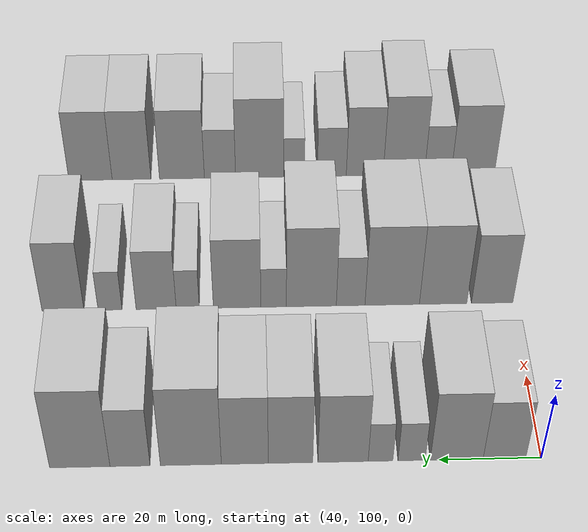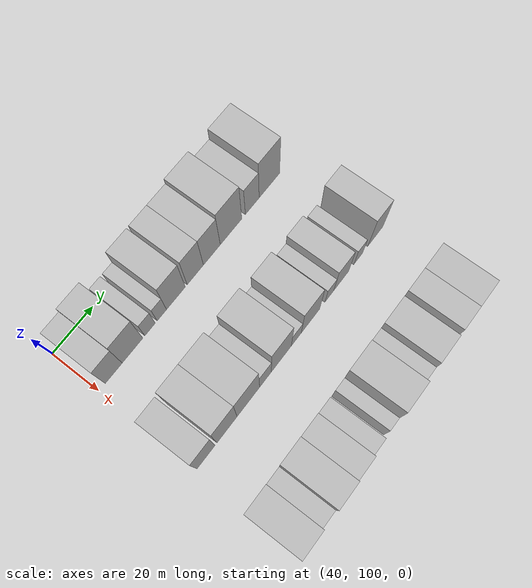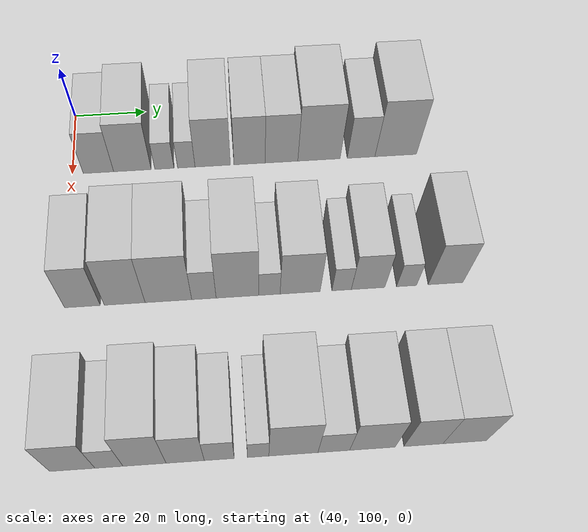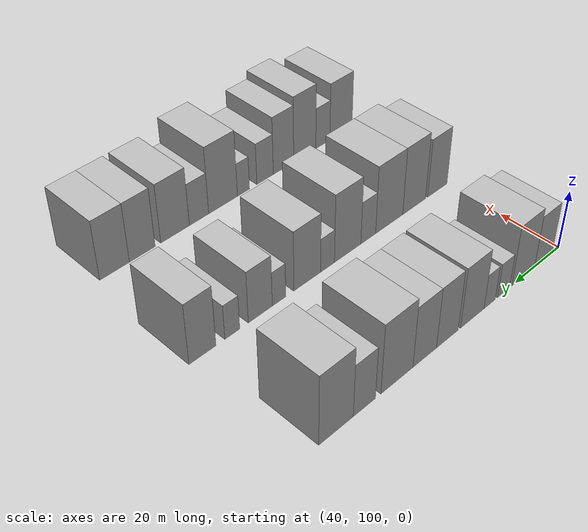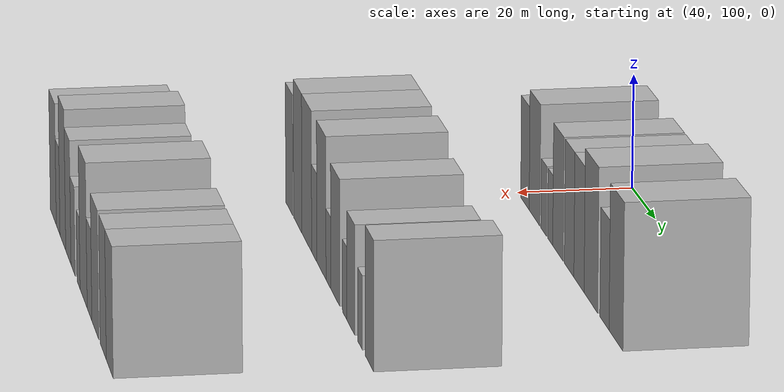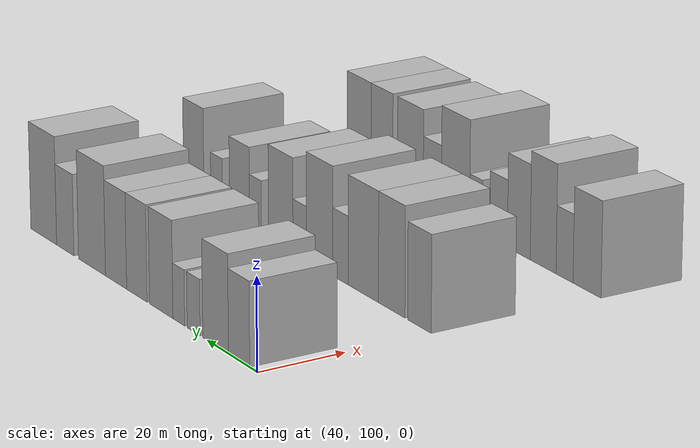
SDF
<sdf version="1.6">
 <world name="default">
  <model name="building_58">
   <static>1</static>
   <pose>50.0000 107.1988 0 0.000000 0.000000 0.000000</pose>
   <link name="link">
    <pose>0 0 9.00 0 0 0</pose>
    <collision name="collision"><geometry><box><size>20.0000 8.3412 18.0000</size></box></geometry></collision>
    <visual name="visual">
     <cast_shadows>0</cast_shadows>
     <geometry><box><size>20.0000 8.3412 18.0000</size></box></geometry>
     <material>
      <script>
       <uri>model://HANNAS_wall/materials/scripts</uri>
       <uri>model://HANNAS_wall/materials/textures</uri>
       <name>vrc/HANNAS_wall</name>
      </script>
     </material>
    </visual>
   </link>
  </model>
  <model name="building_59">
   <static>1</static>
   <pose>50.0000 116.5315 0 0.000000 0.000000 0.000000</pose>
   <link name="link">
    <pose>0 0 10.50 0 0 0</pose>
    <collision name="collision"><geometry><box><size>20.0000 10.3242 21.0000</size></box></geometry></collision>
    <visual name="visual">
     <cast_shadows>0</cast_shadows>
     <geometry><box><size>20.0000 10.3242 21.0000</size></box></geometry>
     <material>
      <script>
       <uri>model://HANNAS_wall/materials/scripts</uri>
       <uri>model://HANNAS_wall/materials/textures</uri>
       <name>vrc/HANNAS_wall</name>
      </script>
     </material>
    </visual>
   </link>
  </model>
  <model name="building_60">
   <static>1</static>
   <pose>50.0000 125.3416 0 0.000000 0.000000 0.000000</pose>
   <link name="link">
    <pose>0 0 6.00 0 0 0</pose>
    <collision name="collision"><geometry><box><size>20.0000 5.2962 12.0000</size></box></geometry></collision>
    <visual name="visual">
     <cast_shadows>0</cast_shadows>
     <geometry><box><size>20.0000 5.2962 12.0000</size></box></geometry>
     <material>
      <script>
       <uri>model://HANNAS_wall/materials/scripts</uri>
       <uri>model://HANNAS_wall/materials/textures</uri>
       <name>vrc/HANNAS_wall</name>
      </script>
     </material>
    </visual>
   </link>
  </model>
  <model name="building_61">
   <static>1</static>
   <pose>50.0000 131.3960 0 0.000000 0.000000 0.000000</pose>
   <link name="link">
    <pose>0 0 6.00 0 0 0</pose>
    <collision name="collision"><geometry><box><size>20.0000 4.8125 12.0000</size></box></geometry></collision>
    <visual name="visual">
     <cast_shadows>0</cast_shadows>
     <geometry><box><size>20.0000 4.8125 12.0000</size></box></geometry>
     <material>
      <script>
       <uri>model://HANNAS_wall/materials/scripts</uri>
       <uri>model://HANNAS_wall/materials/textures</uri>
       <name>vrc/HANNAS_wall</name>
      </script>
     </material>
    </visual>
   </link>
  </model>
  <model name="building_62">
   <static>1</static>
   <pose>50.0000 138.6924 0 0.000000 0.000000 0.000000</pose>
   <link name="link">
    <pose>0 0 10.50 0 0 0</pose>
    <collision name="collision"><geometry><box><size>20.0000 9.7803 21.0000</size></box></geometry></collision>
    <visual name="visual">
     <cast_shadows>0</cast_shadows>
     <geometry><box><size>20.0000 9.7803 21.0000</size></box></geometry>
     <material>
      <script>
       <uri>model://HANNAS_wall/materials/scripts</uri>
       <uri>model://HANNAS_wall/materials/textures</uri>
       <name>vrc/HANNAS_wall</name>
      </script>
     </material>
    </visual>
   </link>
  </model>
  <model name="building_63">
   <static>1</static>
   <pose>50.0000 148.9094 0 0.000000 0.000000 0.000000</pose>
   <link name="link">
    <pose>0 0 10.50 0 0 0</pose>
    <collision name="collision"><geometry><box><size>20.0000 8.6538 21.0000</size></box></geometry></collision>
    <visual name="visual">
     <cast_shadows>0</cast_shadows>
     <geometry><box><size>20.0000 8.6538 21.0000</size></box></geometry>
     <material>
      <script>
       <uri>model://HANNAS_wall/materials/scripts</uri>
       <uri>model://HANNAS_wall/materials/textures</uri>
       <name>vrc/HANNAS_wall</name>
      </script>
     </material>
    </visual>
   </link>
  </model>
  <model name="building_64">
   <static>1</static>
   <pose>50.0000 157.7928 0 0.000000 0.000000 0.000000</pose>
   <link name="link">
    <pose>0 0 10.50 0 0 0</pose>
    <collision name="collision"><geometry><box><size>20.0000 9.1129 21.0000</size></box></geometry></collision>
    <visual name="visual">
     <cast_shadows>0</cast_shadows>
     <geometry><box><size>20.0000 9.1129 21.0000</size></box></geometry>
     <material>
      <script>
       <uri>model://HANNAS_wall/materials/scripts</uri>
       <uri>model://HANNAS_wall/materials/textures</uri>
       <name>vrc/HANNAS_wall</name>
      </script>
     </material>
    </visual>
   </link>
  </model>
  <model name="building_65">
   <static>1</static>
   <pose>50.0000 168.2637 0 0.000000 0.000000 0.000000</pose>
   <link name="link">
    <pose>0 0 12.00 0 0 0</pose>
    <collision name="collision"><geometry><box><size>20.0000 11.8289 24.0000</size></box></geometry></collision>
    <visual name="visual">
     <cast_shadows>0</cast_shadows>
     <geometry><box><size>20.0000 11.8289 24.0000</size></box></geometry>
     <material>
      <script>
       <uri>model://HANNAS_wall/materials/scripts</uri>
       <uri>model://HANNAS_wall/materials/textures</uri>
       <name>vrc/HANNAS_wall</name>
      </script>
     </material>
    </visual>
   </link>
  </model>
  <model name="building_66">
   <static>1</static>
   <pose>50.0000 180.0565 0 0.000000 0.000000 0.000000</pose>
   <link name="link">
    <pose>0 0 9.00 0 0 0</pose>
    <collision name="collision"><geometry><box><size>20.0000 7.7568 18.0000</size></box></geometry></collision>
    <visual name="visual">
     <cast_shadows>0</cast_shadows>
     <geometry><box><size>20.0000 7.7568 18.0000</size></box></geometry>
     <material>
      <script>
       <uri>model://HANNAS_wall/materials/scripts</uri>
       <uri>model://HANNAS_wall/materials/textures</uri>
       <name>vrc/HANNAS_wall</name>
      </script>
     </material>
    </visual>
   </link>
  </model>
  <model name="building_67">
   <static>1</static>
   <pose>50.0000 189.7821 0 0.000000 0.000000 0.000000</pose>
   <link name="link">
    <pose>0 0 12.00 0 0 0</pose>
    <collision name="collision"><geometry><box><size>20.0000 11.6945 24.0000</size></box></geometry></collision>
    <visual name="visual">
     <cast_shadows>0</cast_shadows>
     <geometry><box><size>20.0000 11.6945 24.0000</size></box></geometry>
     <material>
      <script>
       <uri>model://HANNAS_wall/materials/scripts</uri>
       <uri>model://HANNAS_wall/materials/textures</uri>
       <name>vrc/HANNAS_wall</name>
      </script>
     </material>
    </visual>
   </link>
  </model>
  <model name="building_147">
   <static>1</static>
   <pose>90.0000 104.4311 0 0.000000 0.000000 0.000000</pose>
   <link name="link">
    <pose>0 0 10.50 0 0 0</pose>
    <collision name="collision"><geometry><box><size>20.0000 8.9009 21.0000</size></box></geometry></collision>
    <visual name="visual">
     <cast_shadows>0</cast_shadows>
     <geometry><box><size>20.0000 8.9009 21.0000</size></box></geometry>
     <material>
      <script>
       <uri>model://HANNAS_wall/materials/scripts</uri>
       <uri>model://HANNAS_wall/materials/textures</uri>
       <name>vrc/HANNAS_wall</name>
      </script>
     </material>
    </visual>
   </link>
  </model>
  <model name="building_148">
   <static>1</static>
   <pose>90.0000 114.9832 0 0.000000 0.000000 0.000000</pose>
   <link name="link">
    <pose>0 0 12.00 0 0 0</pose>
    <collision name="collision"><geometry><box><size>20.0000 10.2034 24.0000</size></box></geometry></collision>
    <visual name="visual">
     <cast_shadows>0</cast_shadows>
     <geometry><box><size>20.0000 10.2034 24.0000</size></box></geometry>
     <material>
      <script>
       <uri>model://HANNAS_wall/materials/scripts</uri>
       <uri>model://HANNAS_wall/materials/textures</uri>
       <name>vrc/HANNAS_wall</name>
      </script>
     </material>
    </visual>
   </link>
  </model>
  <model name="building_149">
   <static>1</static>
   <pose>90.0000 125.9275 0 0.000000 0.000000 0.000000</pose>
   <link name="link">
    <pose>0 0 12.00 0 0 0</pose>
    <collision name="collision"><geometry><box><size>20.0000 11.6853 24.0000</size></box></geometry></collision>
    <visual name="visual">
     <cast_shadows>0</cast_shadows>
     <geometry><box><size>20.0000 11.6853 24.0000</size></box></geometry>
     <material>
      <script>
       <uri>model://HANNAS_wall/materials/scripts</uri>
       <uri>model://HANNAS_wall/materials/textures</uri>
       <name>vrc/HANNAS_wall</name>
      </script>
     </material>
    </visual>
   </link>
  </model>
  <model name="building_150">
   <static>1</static>
   <pose>90.0000 134.8440 0 0.000000 0.000000 0.000000</pose>
   <link name="link">
    <pose>0 0 7.50 0 0 0</pose>
    <collision name="collision"><geometry><box><size>20.0000 6.1477 15.0000</size></box></geometry></collision>
    <visual name="visual">
     <cast_shadows>0</cast_shadows>
     <geometry><box><size>20.0000 6.1477 15.0000</size></box></geometry>
     <material>
      <script>
       <uri>model://HANNAS_wall/materials/scripts</uri>
       <uri>model://HANNAS_wall/materials/textures</uri>
       <name>vrc/HANNAS_wall</name>
      </script>
     </material>
    </visual>
   </link>
  </model>
  <model name="building_151">
   <static>1</static>
   <pose>90.0000 143.2712 0 0.000000 0.000000 0.000000</pose>
   <link name="link">
    <pose>0 0 12.00 0 0 0</pose>
    <collision name="collision"><geometry><box><size>20.0000 10.7068 24.0000</size></box></geometry></collision>
    <visual name="visual">
     <cast_shadows>0</cast_shadows>
     <geometry><box><size>20.0000 10.7068 24.0000</size></box></geometry>
     <material>
      <script>
       <uri>model://HANNAS_wall/materials/scripts</uri>
       <uri>model://HANNAS_wall/materials/textures</uri>
       <name>vrc/HANNAS_wall</name>
      </script>
     </material>
    </visual>
   </link>
  </model>
  <model name="building_152">
   <static>1</static>
   <pose>90.0000 151.3386 0 0.000000 0.000000 0.000000</pose>
   <link name="link">
    <pose>0 0 6.00 0 0 0</pose>
    <collision name="collision"><geometry><box><size>20.0000 5.4279 12.0000</size></box></geometry></collision>
    <visual name="visual">
     <cast_shadows>0</cast_shadows>
     <geometry><box><size>20.0000 5.4279 12.0000</size></box></geometry>
     <material>
      <script>
       <uri>model://HANNAS_wall/materials/scripts</uri>
       <uri>model://HANNAS_wall/materials/textures</uri>
       <name>vrc/HANNAS_wall</name>
      </script>
     </material>
    </visual>
   </link>
  </model>
  <model name="building_153">
   <static>1</static>
   <pose>90.0000 159.1424 0 0.000000 0.000000 0.000000</pose>
   <link name="link">
    <pose>0 0 10.50 0 0 0</pose>
    <collision name="collision"><geometry><box><size>20.0000 10.1797 21.0000</size></box></geometry></collision>
    <visual name="visual">
     <cast_shadows>0</cast_shadows>
     <geometry><box><size>20.0000 10.1797 21.0000</size></box></geometry>
     <material>
      <script>
       <uri>model://HANNAS_wall/materials/scripts</uri>
       <uri>model://HANNAS_wall/materials/textures</uri>
       <name>vrc/HANNAS_wall</name>
      </script>
     </material>
    </visual>
   </link>
  </model>
  <model name="building_154">
   <static>1</static>
   <pose>90.0000 169.7015 0 0.000000 0.000000 0.000000</pose>
   <link name="link">
    <pose>0 0 6.00 0 0 0</pose>
    <collision name="collision"><geometry><box><size>20.0000 4.9384 12.0000</size></box></geometry></collision>
    <visual name="visual">
     <cast_shadows>0</cast_shadows>
     <geometry><box><size>20.0000 4.9384 12.0000</size></box></geometry>
     <material>
      <script>
       <uri>model://HANNAS_wall/materials/scripts</uri>
       <uri>model://HANNAS_wall/materials/textures</uri>
       <name>vrc/HANNAS_wall</name>
      </script>
     </material>
    </visual>
   </link>
  </model>
  <model name="building_155">
   <static>1</static>
   <pose>90.0000 176.4495 0 0.000000 0.000000 0.000000</pose>
   <link name="link">
    <pose>0 0 9.00 0 0 0</pose>
    <collision name="collision"><geometry><box><size>20.0000 8.5575 18.0000</size></box></geometry></collision>
    <visual name="visual">
     <cast_shadows>0</cast_shadows>
     <geometry><box><size>20.0000 8.5575 18.0000</size></box></geometry>
     <material>
      <script>
       <uri>model://HANNAS_wall/materials/scripts</uri>
       <uri>model://HANNAS_wall/materials/textures</uri>
       <name>vrc/HANNAS_wall</name>
      </script>
     </material>
    </visual>
   </link>
  </model>
  <model name="building_156">
   <static>1</static>
   <pose>90.0000 186.2856 0 0.000000 0.000000 0.000000</pose>
   <link name="link">
    <pose>0 0 6.00 0 0 0</pose>
    <collision name="collision"><geometry><box><size>20.0000 5.1147 12.0000</size></box></geometry></collision>
    <visual name="visual">
     <cast_shadows>0</cast_shadows>
     <geometry><box><size>20.0000 5.1147 12.0000</size></box></geometry>
     <material>
      <script>
       <uri>model://HANNAS_wall/materials/scripts</uri>
       <uri>model://HANNAS_wall/materials/textures</uri>
       <name>vrc/HANNAS_wall</name>
      </script>
     </material>
    </visual>
   </link>
  </model>
  <model name="building_157">
   <static>1</static>
   <pose>90.0000 196.3096 0 0.000000 0.000000 0.000000</pose>
   <link name="link">
    <pose>0 0 10.50 0 0 0</pose>
    <collision name="collision"><geometry><box><size>20.0000 8.9333 21.0000</size></box></geometry></collision>
    <visual name="visual">
     <cast_shadows>0</cast_shadows>
     <geometry><box><size>20.0000 8.9333 21.0000</size></box></geometry>
     <material>
      <script>
       <uri>model://HANNAS_wall/materials/scripts</uri>
       <uri>model://HANNAS_wall/materials/textures</uri>
       <name>vrc/HANNAS_wall</name>
      </script>
     </material>
    </visual>
   </link>
  </model>
  <model name="building_221">
   <static>1</static>
   <pose>130.0000 103.7897 0 0.000000 0.000000 0.000000</pose>
   <link name="link">
    <pose>0 0 10.50 0 0 0</pose>
    <collision name="collision"><geometry><box><size>20.0000 10.1486 21.0000</size></box></geometry></collision>
    <visual name="visual">
     <cast_shadows>0</cast_shadows>
     <geometry><box><size>20.0000 10.1486 21.0000</size></box></geometry>
     <material>
      <script>
       <uri>model://HANNAS_wall/materials/scripts</uri>
       <uri>model://HANNAS_wall/materials/textures</uri>
       <name>vrc/HANNAS_wall</name>
      </script>
     </material>
    </visual>
   </link>
  </model>
  <model name="building_222">
   <static>1</static>
   <pose>130.0000 112.0144 0 0.000000 0.000000 0.000000</pose>
   <link name="link">
    <pose>0 0 7.50 0 0 0</pose>
    <collision name="collision"><geometry><box><size>20.0000 6.3008 15.0000</size></box></geometry></collision>
    <visual name="visual">
     <cast_shadows>0</cast_shadows>
     <geometry><box><size>20.0000 6.3008 15.0000</size></box></geometry>
     <material>
      <script>
       <uri>model://HANNAS_wall/materials/scripts</uri>
       <uri>model://HANNAS_wall/materials/textures</uri>
       <name>vrc/HANNAS_wall</name>
      </script>
     </material>
    </visual>
   </link>
  </model>
  <model name="building_223">
   <static>1</static>
   <pose>130.0000 120.0126 0 0.000000 0.000000 0.000000</pose>
   <link name="link">
    <pose>0 0 12.00 0 0 0</pose>
    <collision name="collision"><geometry><box><size>20.0000 9.6955 24.0000</size></box></geometry></collision>
    <visual name="visual">
     <cast_shadows>0</cast_shadows>
     <geometry><box><size>20.0000 9.6955 24.0000</size></box></geometry>
     <material>
      <script>
       <uri>model://HANNAS_wall/materials/scripts</uri>
       <uri>model://HANNAS_wall/materials/textures</uri>
       <name>vrc/HANNAS_wall</name>
      </script>
     </material>
    </visual>
   </link>
  </model>
  <model name="building_224">
   <static>1</static>
   <pose>130.0000 129.1813 0 0.000000 0.000000 0.000000</pose>
   <link name="link">
    <pose>0 0 10.50 0 0 0</pose>
    <collision name="collision"><geometry><box><size>20.0000 8.6419 21.0000</size></box></geometry></collision>
    <visual name="visual">
     <cast_shadows>0</cast_shadows>
     <geometry><box><size>20.0000 8.6419 21.0000</size></box></geometry>
     <material>
      <script>
       <uri>model://HANNAS_wall/materials/scripts</uri>
       <uri>model://HANNAS_wall/materials/textures</uri>
       <name>vrc/HANNAS_wall</name>
      </script>
     </material>
    </visual>
   </link>
  </model>
  <model name="building_225">
   <static>1</static>
   <pose>130.0000 136.9025 0 0.000000 0.000000 0.000000</pose>
   <link name="link">
    <pose>0 0 7.50 0 0 0</pose>
    <collision name="collision"><geometry><box><size>20.0000 6.8005 15.0000</size></box></geometry></collision>
    <visual name="visual">
     <cast_shadows>0</cast_shadows>
     <geometry><box><size>20.0000 6.8005 15.0000</size></box></geometry>
     <material>
      <script>
       <uri>model://HANNAS_wall/materials/scripts</uri>
       <uri>model://HANNAS_wall/materials/textures</uri>
       <name>vrc/HANNAS_wall</name>
      </script>
     </material>
    </visual>
   </link>
  </model>
  <model name="building_226">
   <static>1</static>
   <pose>130.0000 145.7318 0 0.000000 0.000000 0.000000</pose>
   <link name="link">
    <pose>0 0 6.00 0 0 0</pose>
    <collision name="collision"><geometry><box><size>20.0000 4.8581 12.0000</size></box></geometry></collision>
    <visual name="visual">
     <cast_shadows>0</cast_shadows>
     <geometry><box><size>20.0000 4.8581 12.0000</size></box></geometry>
     <material>
      <script>
       <uri>model://HANNAS_wall/materials/scripts</uri>
       <uri>model://HANNAS_wall/materials/textures</uri>
       <name>vrc/HANNAS_wall</name>
      </script>
     </material>
    </visual>
   </link>
  </model>
  <model name="building_227">
   <static>1</static>
   <pose>130.0000 153.7646 0 0.000000 0.000000 0.000000</pose>
   <link name="link">
    <pose>0 0 12.00 0 0 0</pose>
    <collision name="collision"><geometry><box><size>20.0000 11.2075 24.0000</size></box></geometry></collision>
    <visual name="visual">
     <cast_shadows>0</cast_shadows>
     <geometry><box><size>20.0000 11.2075 24.0000</size></box></geometry>
     <material>
      <script>
       <uri>model://HANNAS_wall/materials/scripts</uri>
       <uri>model://HANNAS_wall/materials/textures</uri>
       <name>vrc/HANNAS_wall</name>
      </script>
     </material>
    </visual>
   </link>
  </model>
  <model name="building_228">
   <static>1</static>
   <pose>130.0000 163.0101 0 0.000000 0.000000 0.000000</pose>
   <link name="link">
    <pose>0 0 7.50 0 0 0</pose>
    <collision name="collision"><geometry><box><size>20.0000 7.2834 15.0000</size></box></geometry></collision>
    <visual name="visual">
     <cast_shadows>0</cast_shadows>
     <geometry><box><size>20.0000 7.2834 15.0000</size></box></geometry>
     <material>
      <script>
       <uri>model://HANNAS_wall/materials/scripts</uri>
       <uri>model://HANNAS_wall/materials/textures</uri>
       <name>vrc/HANNAS_wall</name>
      </script>
     </material>
    </visual>
   </link>
  </model>
  <model name="building_229">
   <static>1</static>
   <pose>130.0000 171.8889 0 0.000000 0.000000 0.000000</pose>
   <link name="link">
    <pose>0 0 10.50 0 0 0</pose>
    <collision name="collision"><geometry><box><size>20.0000 10.4742 21.0000</size></box></geometry></collision>
    <visual name="visual">
     <cast_shadows>0</cast_shadows>
     <geometry><box><size>20.0000 10.4742 21.0000</size></box></geometry>
     <material>
      <script>
       <uri>model://HANNAS_wall/materials/scripts</uri>
       <uri>model://HANNAS_wall/materials/textures</uri>
       <name>vrc/HANNAS_wall</name>
      </script>
     </material>
    </visual>
   </link>
  </model>
  <model name="building_230">
   <static>1</static>
   <pose>130.0000 183.6414 0 0.000000 0.000000 0.000000</pose>
   <link name="link">
    <pose>0 0 10.50 0 0 0</pose>
    <collision name="collision"><geometry><box><size>20.0000 9.0307 21.0000</size></box></geometry></collision>
    <visual name="visual">
     <cast_shadows>0</cast_shadows>
     <geometry><box><size>20.0000 9.0307 21.0000</size></box></geometry>
     <material>
      <script>
       <uri>model://HANNAS_wall/materials/scripts</uri>
       <uri>model://HANNAS_wall/materials/textures</uri>
       <name>vrc/HANNAS_wall</name>
      </script>
     </material>
    </visual>
   </link>
  </model>
  <model name="building_231">
   <static>1</static>
   <pose>130.0000 193.1940 0 0.000000 0.000000 0.000000</pose>
   <link name="link">
    <pose>0 0 10.50 0 0 0</pose>
    <collision name="collision"><geometry><box><size>20.0000 10.0745 21.0000</size></box></geometry></collision>
    <visual name="visual">
     <cast_shadows>0</cast_shadows>
     <geometry><box><size>20.0000 10.0745 21.0000</size></box></geometry>
     <material>
      <script>
       <uri>model://HANNAS_wall/materials/scripts</uri>
       <uri>model://HANNAS_wall/materials/textures</uri>
       <name>vrc/HANNAS_wall</name>
      </script>
     </material>
    </visual>
   </link>
  </model>
 </world>
</sdf>
